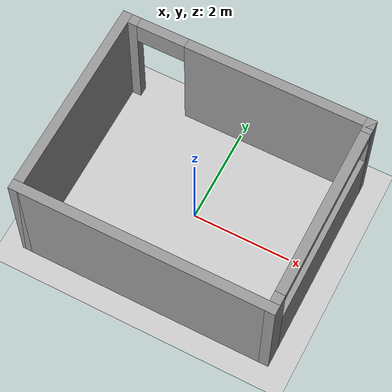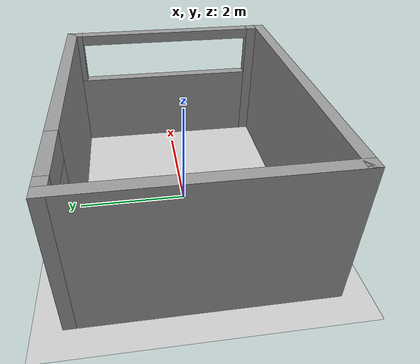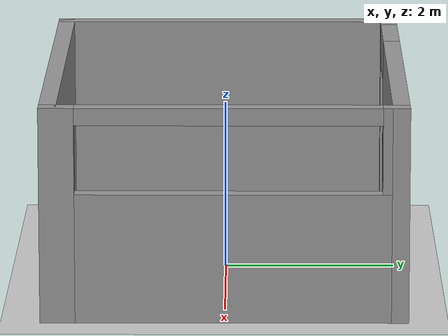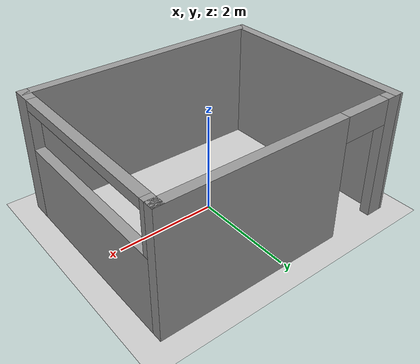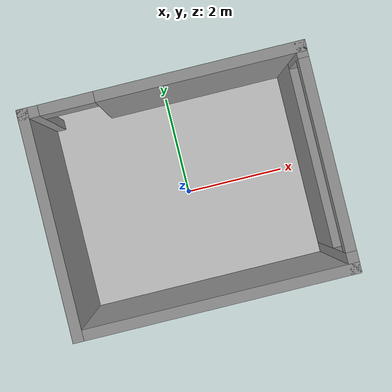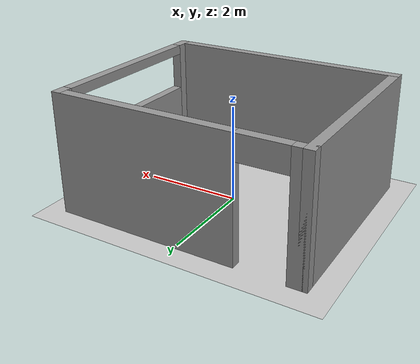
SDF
<?xml version='1.0'?>
<sdf version='1.4'>
  <world name="default">
    <!-- A ground plane -->
    <include>
      <uri>model://ground_plane</uri>
    </include>
  <model name='new'>
    <link name='Wall_0'>
      <pose>0 2 0 0 -0 0</pose>
      <visual name='Wall_0_Visual_0'>
        <pose>-2.407 0 1.25 0 -0 0</pose>
        <geometry>
          <box>
            <size>0.385991 0.2 2.5</size>
          </box>
        </geometry>
        <material>
          <script>
            <uri>file://media/materials/scripts/gazebo.material</uri>
            <name>Gazebo/Grey</name>
          </script>
        </material>
      </visual>
      <collision name='Wall_0_Collision_0'>
        <geometry>
          <box>
            <size>0.385991 0.2 2.5</size>
          </box>
        </geometry>
        <pose>-2.407 0 1.25 0 -0 0</pose>
      </collision>
      <visual name='Wall_0_Visual_1'>
        <pose>0.692995 0 1.25 0 -0 0</pose>
        <geometry>
          <box>
            <size>3.81401 0.2 2.5</size>
          </box>
        </geometry>
        <material>
          <script>
            <uri>file://media/materials/scripts/gazebo.material</uri>
            <name>Gazebo/Grey</name>
          </script>
        </material>
      </visual>
      <collision name='Wall_0_Collision_1'>
        <geometry>
          <box>
            <size>3.81401 0.2 2.5</size>
          </box>
        </geometry>
        <pose>0.692995 0 1.25 0 -0 0</pose>
      </collision>
      <visual name='Wall_0_Visual_2'>
        <pose>-1.71401 0 2.25 0 -0 0</pose>
        <geometry>
          <box>
            <size>1 0.2 0.5</size>
          </box>
        </geometry>
        <material>
          <script>
            <uri>file://media/materials/scripts/gazebo.material</uri>
            <name>Gazebo/Grey</name>
          </script>
        </material>
      </visual>
      <collision name='Wall_0_Collision_2'>
        <geometry>
          <box>
            <size>1 0.2 0.5</size>
          </box>
        </geometry>
        <pose>-1.71401 0 2.25 0 -0 0</pose>
      </collision>
    </link>
    <link name='Wall_2'>
      <collision name='Wall_2_Collision'>
        <geometry>
          <box>
            <size>4.2 0.2 2.5</size>
          </box>
        </geometry>
        <pose>0 0 1.25 0 -0 0</pose>
      </collision>
      <visual name='Wall_2_Visual'>
        <pose>0 0 1.25 0 -0 0</pose>
        <geometry>
          <box>
            <size>4.2 0.2 2.5</size>
          </box>
        </geometry>
        <material>
          <script>
            <uri>file://media/materials/scripts/gazebo.material</uri>
            <name>Gazebo/Grey</name>
          </script>
        </material>
      </visual>
      <velocity_decay>
        <linear>0</linear>
        <angular>0</angular>
      </velocity_decay>
      <pose>-2.5 0 0 0 0 -1.5708</pose>
    </link>
    <link name='Wall_4'>
      <collision name='Wall_4_Collision'>
        <geometry>
          <box>
            <size>5.2 0.2 2.5</size>
          </box>
        </geometry>
        <pose>0 0 1.25 0 -0 0</pose>
      </collision>
      <visual name='Wall_4_Visual'>
        <pose>0 0 1.25 0 -0 0</pose>
        <geometry>
          <box>
            <size>5.2 0.2 2.5</size>
          </box>
        </geometry>
        <material>
          <script>
            <uri>file://media/materials/scripts/gazebo.material</uri>
            <name>Gazebo/Grey</name>
          </script>
        </material>
      </visual>
      <velocity_decay>
        <linear>0</linear>
        <angular>0</angular>
      </velocity_decay>
      <pose>0 -2 0 0 -0 0</pose>
    </link>
    <link name='Wall_6'>
      <pose>2.5 0 0 0 -0 1.5708</pose>
      <visual name='Wall_6_Visual_0'>
        <pose>-1.89915 0 1.25 0 -0 0</pose>
        <geometry>
          <box>
            <size>0.401708 0.2 2.5</size>
          </box>
        </geometry>
        <material>
          <script>
            <uri>file://media/materials/scripts/gazebo.material</uri>
            <name>Gazebo/Grey</name>
          </script>
        </material>
      </visual>
      <collision name='Wall_6_Collision_0'>
        <geometry>
          <box>
            <size>0.401708 0.2 2.5</size>
          </box>
        </geometry>
        <pose>-1.89915 0 1.25 0 -0 0</pose>
      </collision>
      <visual name='Wall_6_Visual_1'>
        <pose>0.200854 0 0.75 0 -0 0</pose>
        <geometry>
          <box>
            <size>3.79829 0.2 1.5</size>
          </box>
        </geometry>
        <material>
          <script>
            <uri>file://media/materials/scripts/gazebo.material</uri>
            <name>Gazebo/Grey</name>
          </script>
        </material>
      </visual>
      <collision name='Wall_6_Collision_1'>
        <geometry>
          <box>
            <size>3.79829 0.2 1.5</size>
          </box>
        </geometry>
        <pose>0.200854 0 0.75 0 -0 0</pose>
      </collision>
      <visual name='Wall_6_Visual_2'>
        <pose>1.94585 0 2 0 -0 0</pose>
        <geometry>
          <box>
            <size>0.308292 0.2 1</size>
          </box>
        </geometry>
        <material>
          <script>
            <uri>file://media/materials/scripts/gazebo.material</uri>
            <name>Gazebo/Grey</name>
          </script>
        </material>
      </visual>
      <collision name='Wall_6_Collision_2'>
        <geometry>
          <box>
            <size>0.308292 0.2 1</size>
          </box>
        </geometry>
        <pose>1.94585 0 2 0 -0 0</pose>
      </collision>
      <visual name='Wall_6_Visual_3'>
        <pose>0.046708 0 2.4 0 -0 0</pose>
        <geometry>
          <box>
            <size>3.49 0.2 0.2</size>
          </box>
        </geometry>
        <material>
          <script>
            <uri>file://media/materials/scripts/gazebo.material</uri>
            <name>Gazebo/Grey</name>
          </script>
        </material>
      </visual>
      <collision name='Wall_6_Collision_3'>
        <geometry>
          <box>
            <size>3.49 0.2 0.2</size>
          </box>
        </geometry>
        <pose>0.046708 0 2.4 0 -0 0</pose>
      </collision>
    </link>
    <static>1</static>
  </model>
    <!-- Own physics settings to speed up simulation -->
    <physics type='ode'>
      <max_step_size>0.01</max_step_size>
      <real_time_factor>1</real_time_factor>
      <real_time_update_rate>100</real_time_update_rate>
      <gravity>0 0 -9.8</gravity>
    </physics>
  </world>
</sdf>
